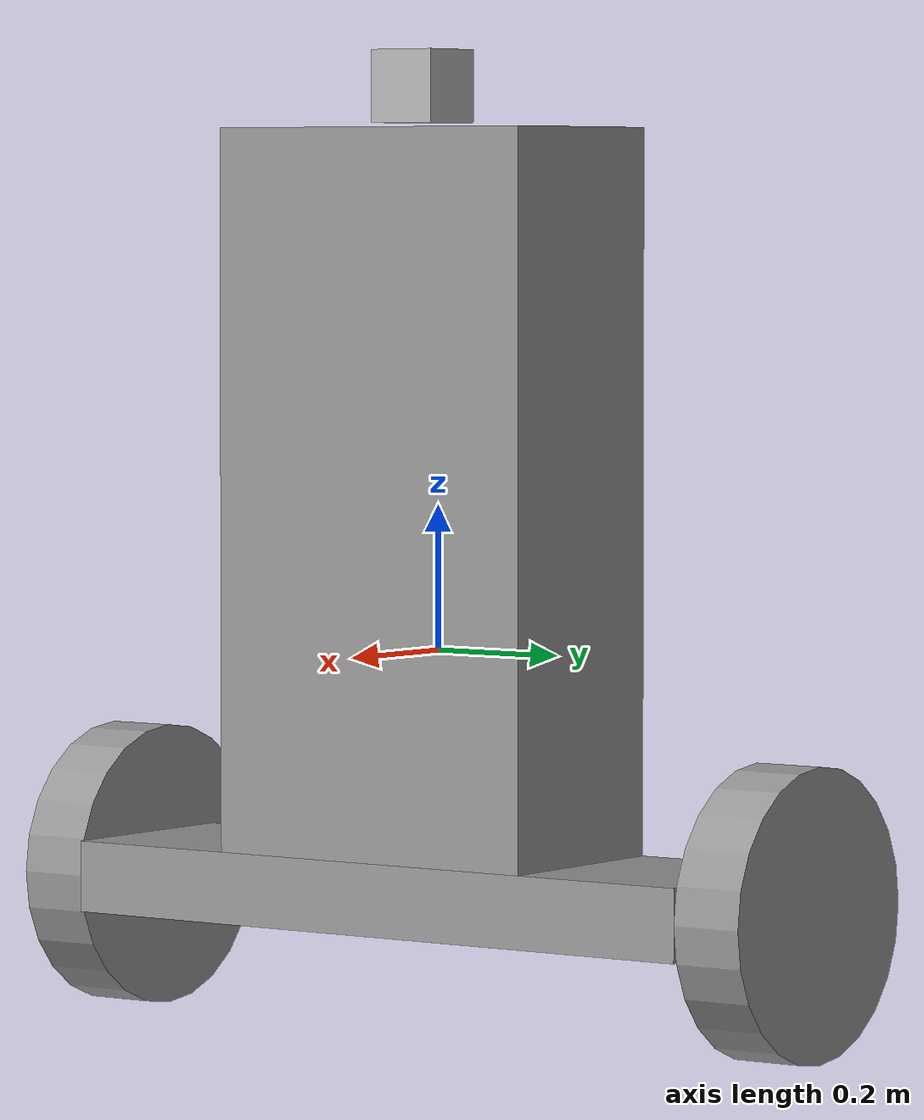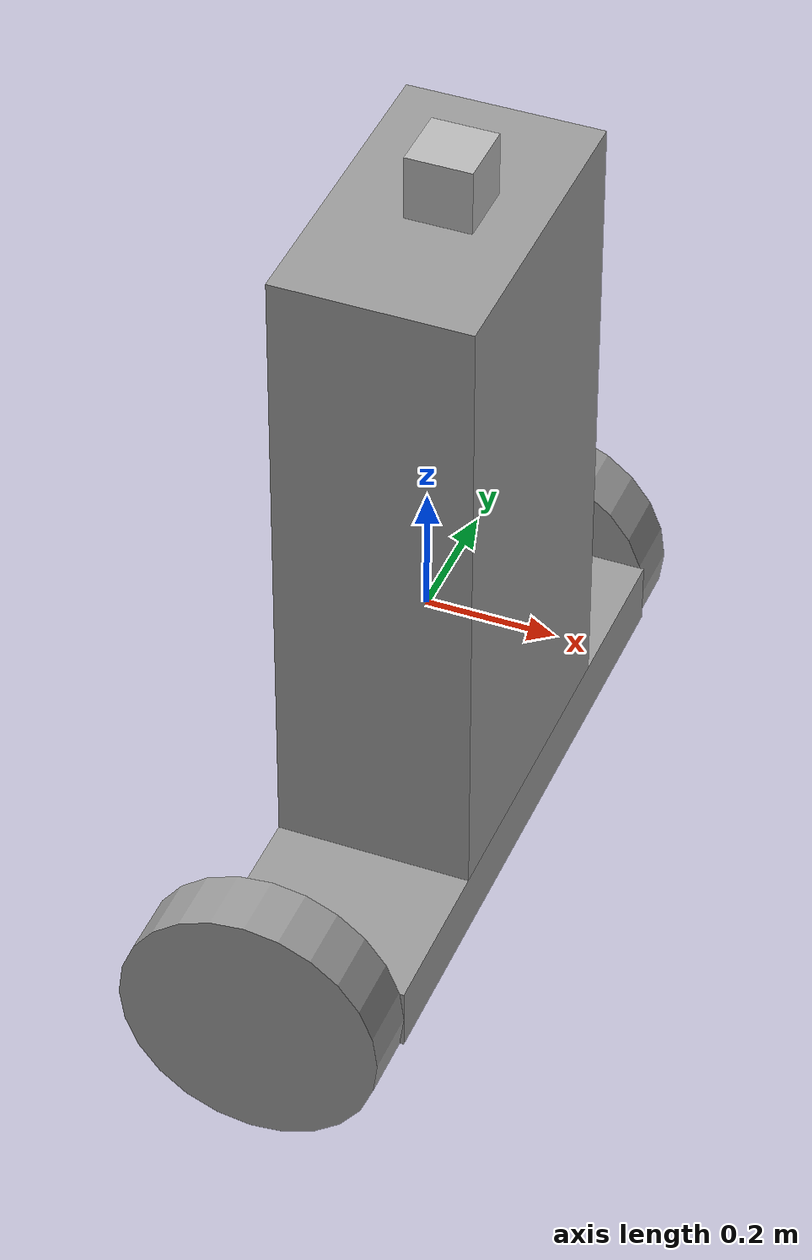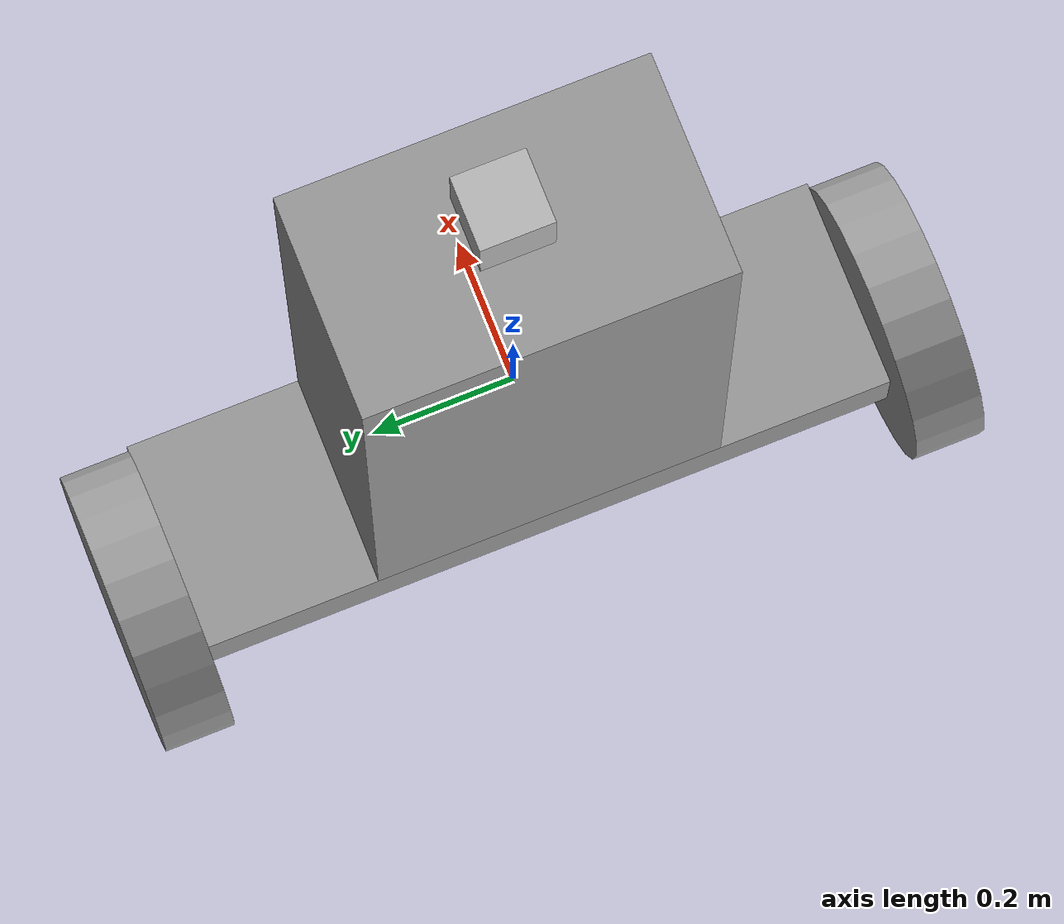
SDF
<?xml version='1.0'?>
<sdf version='1.6'>
  <model name='Humanoid'>
    <link name='link_0'>
      <pose frame=''>-0.033646 -0.549695 -0.331284 1.5707 -0 0</pose>
      <inertial>
        <mass>1</mass>
        <inertia>
          <ixx>0.145833</ixx>
          <ixy>0</ixy>
          <ixz>0</ixz>
          <iyy>0.145833</iyy>
          <iyz>0</iyz>
          <izz>0.125</izz>
        </inertia>
        <pose frame=''>0 0 0 0 -0 0</pose>
      </inertial>
      <self_collide>0</self_collide>
      <kinematic>0</kinematic>
      <visual name='visual'>
        <pose frame=''>0 0 0 0 -0 0</pose>
        <geometry>
          <cylinder>
            <radius>0.2</radius>
            <length>0.1</length>
          </cylinder>
        </geometry>
        <material>
          <lighting>1</lighting>
          <script>
            <uri>file://media/materials/scripts/gazebo.material</uri>
            <name>Gazebo/Grey</name>
          </script>
          <shader type='pixel'>
            <normal_map>__default__</normal_map>
          </shader>
          <ambient>0.3 0.3 0.3 1</ambient>
          <diffuse>0.7 0.7 0.7 1</diffuse>
          <specular>0.01 0.01 0.01 1</specular>
          <emissive>0 0 0 1</emissive>
        </material>
        <transparency>0</transparency>
        <cast_shadows>1</cast_shadows>
      </visual>
      <collision name='collision'>
        <laser_retro>0</laser_retro>
        <max_contacts>10</max_contacts>
        <pose frame=''>0 0 0 0 -0 0</pose>
        <geometry>
          <cylinder>
            <radius>0.2</radius>
            <length>0.1</length>
          </cylinder>
        </geometry>
        <surface>
          <friction>
            <ode>
              <mu>1</mu>
              <mu2>1</mu2>
              <fdir1>0 0 0</fdir1>
              <slip1>0</slip1>
              <slip2>0</slip2>
            </ode>
            <torsional>
              <coefficient>1</coefficient>
              <patch_radius>0</patch_radius>
              <surface_radius>0</surface_radius>
              <use_patch_radius>1</use_patch_radius>
              <ode>
                <slip>0</slip>
              </ode>
            </torsional>
          </friction>
          <bounce>
            <restitution_coefficient>0</restitution_coefficient>
            <threshold>1e+06</threshold>
          </bounce>
          <contact>
            <collide_without_contact>0</collide_without_contact>
            <collide_without_contact_bitmask>1</collide_without_contact_bitmask>
            <collide_bitmask>1</collide_bitmask>
            <ode>
              <soft_cfm>0</soft_cfm>
              <soft_erp>0.2</soft_erp>
              <kp>1e+13</kp>
              <kd>1</kd>
              <max_vel>0.01</max_vel>
              <min_depth>0</min_depth>
            </ode>
            <bullet>
              <split_impulse>1</split_impulse>
              <split_impulse_penetration_threshold>-0.01</split_impulse_penetration_threshold>
              <soft_cfm>0</soft_cfm>
              <soft_erp>0.2</soft_erp>
              <kp>1e+13</kp>
              <kd>1</kd>
            </bullet>
          </contact>
        </surface>
      </collision>
    </link>
    <link name='link_0_clone'>
      <pose frame=''>-0.033646 0.550344 -0.331284 1.5707 -0 0</pose>
      <inertial>
        <mass>1</mass>
        <inertia>
          <ixx>0.145833</ixx>
          <ixy>0</ixy>
          <ixz>0</ixz>
          <iyy>0.145833</iyy>
          <iyz>0</iyz>
          <izz>0.125</izz>
        </inertia>
        <pose frame=''>0 0 0 0 -0 0</pose>
      </inertial>
      <self_collide>0</self_collide>
      <kinematic>0</kinematic>
      <visual name='visual'>
        <pose frame=''>0 0 0 0 -0 0</pose>
        <geometry>
          <cylinder>
            <radius>0.2</radius>
            <length>0.1</length>
          </cylinder>
        </geometry>
        <material>
          <lighting>1</lighting>
          <script>
            <uri>file://media/materials/scripts/gazebo.material</uri>
            <name>Gazebo/Grey</name>
          </script>
          <shader type='pixel'>
            <normal_map>__default__</normal_map>
          </shader>
          <ambient>0.3 0.3 0.3 1</ambient>
          <diffuse>0.7 0.7 0.7 1</diffuse>
          <specular>0.01 0.01 0.01 1</specular>
          <emissive>0 0 0 1</emissive>
        </material>
        <transparency>0</transparency>
        <cast_shadows>1</cast_shadows>
      </visual>
      <collision name='collision'>
        <laser_retro>0</laser_retro>
        <max_contacts>10</max_contacts>
        <pose frame=''>0 0 0 0 -0 0</pose>
        <geometry>
          <cylinder>
            <radius>0.2</radius>
            <length>0.1</length>
          </cylinder>
        </geometry>
        <surface>
          <friction>
            <ode>
              <mu>1</mu>
              <mu2>1</mu2>
              <fdir1>0 0 0</fdir1>
              <slip1>0</slip1>
              <slip2>0</slip2>
            </ode>
            <torsional>
              <coefficient>1</coefficient>
              <patch_radius>0</patch_radius>
              <surface_radius>0</surface_radius>
              <use_patch_radius>1</use_patch_radius>
              <ode>
                <slip>0</slip>
              </ode>
            </torsional>
          </friction>
          <bounce>
            <restitution_coefficient>0</restitution_coefficient>
            <threshold>1e+06</threshold>
          </bounce>
          <contact>
            <collide_without_contact>0</collide_without_contact>
            <collide_without_contact_bitmask>1</collide_without_contact_bitmask>
            <collide_bitmask>1</collide_bitmask>
            <ode>
              <soft_cfm>0</soft_cfm>
              <soft_erp>0.2</soft_erp>
              <kp>1e+13</kp>
              <kd>1</kd>
              <max_vel>0.01</max_vel>
              <min_depth>0</min_depth>
            </ode>
            <bullet>
              <split_impulse>1</split_impulse>
              <split_impulse_penetration_threshold>-0.01</split_impulse_penetration_threshold>
              <soft_cfm>0</soft_cfm>
              <soft_erp>0.2</soft_erp>
              <kp>1e+13</kp>
              <kd>1</kd>
            </bullet>
          </contact>
        </surface>
      </collision>
    </link>
    <link name='link_1'>
      <pose frame=''>0.016354 0.000324 -0.331284 0 -0 0</pose>
      <inertial>
        <mass>1</mass>
        <inertia>
          <ixx>0.166667</ixx>
          <ixy>0</ixy>
          <ixz>0</ixz>
          <iyy>0.166667</iyy>
          <iyz>0</iyz>
          <izz>0.166667</izz>
        </inertia>
        <pose frame=''>0 0 0 0 -0 0</pose>
      </inertial>
      <self_collide>0</self_collide>
      <kinematic>0</kinematic>
      <visual name='visual'>
        <pose frame=''>0 0 0 0 -0 0</pose>
        <geometry>
          <box>
            <size>0.3 1 0.1</size>
          </box>
        </geometry>
        <material>
          <lighting>1</lighting>
          <script>
            <uri>file://media/materials/scripts/gazebo.material</uri>
            <name>Gazebo/Grey</name>
          </script>
          <shader type='pixel'>
            <normal_map>__default__</normal_map>
          </shader>
          <ambient>0.3 0.3 0.3 1</ambient>
          <diffuse>0.7 0.7 0.7 1</diffuse>
          <specular>0.01 0.01 0.01 1</specular>
          <emissive>0 0 0 1</emissive>
        </material>
        <transparency>0</transparency>
        <cast_shadows>1</cast_shadows>
      </visual>
      <collision name='collision'>
        <laser_retro>0</laser_retro>
        <max_contacts>10</max_contacts>
        <pose frame=''>0 0 0 0 -0 0</pose>
        <geometry>
          <box>
            <size>0.3 1 0.1</size>
          </box>
        </geometry>
        <surface>
          <friction>
            <ode>
              <mu>1</mu>
              <mu2>1</mu2>
              <fdir1>0 0 0</fdir1>
              <slip1>0</slip1>
              <slip2>0</slip2>
            </ode>
            <torsional>
              <coefficient>1</coefficient>
              <patch_radius>0</patch_radius>
              <surface_radius>0</surface_radius>
              <use_patch_radius>1</use_patch_radius>
              <ode>
                <slip>0</slip>
              </ode>
            </torsional>
          </friction>
          <bounce>
            <restitution_coefficient>0</restitution_coefficient>
            <threshold>1e+06</threshold>
          </bounce>
          <contact>
            <collide_without_contact>0</collide_without_contact>
            <collide_without_contact_bitmask>1</collide_without_contact_bitmask>
            <collide_bitmask>1</collide_bitmask>
            <ode>
              <soft_cfm>0</soft_cfm>
              <soft_erp>0.2</soft_erp>
              <kp>1e+13</kp>
              <kd>1</kd>
              <max_vel>0.01</max_vel>
              <min_depth>0</min_depth>
            </ode>
            <bullet>
              <split_impulse>1</split_impulse>
              <split_impulse_penetration_threshold>-0.01</split_impulse_penetration_threshold>
              <soft_cfm>0</soft_cfm>
              <soft_erp>0.2</soft_erp>
              <kp>1e+13</kp>
              <kd>1</kd>
            </bullet>
          </contact>
        </surface>
      </collision>
    </link>
    <link name='link_2'>
      <pose frame=''>0.016354 0.000324 0.218716 0 -0 0</pose>
      <inertial>
        <mass>1</mass>
        <inertia>
          <ixx>0.166667</ixx>
          <ixy>0</ixy>
          <ixz>0</ixz>
          <iyy>0.166667</iyy>
          <iyz>0</iyz>
          <izz>0.166667</izz>
        </inertia>
        <pose frame=''>0 0 0 0 -0 0</pose>
      </inertial>
      <self_collide>0</self_collide>
      <kinematic>0</kinematic>
      <visual name='visual'>
        <pose frame=''>0 0 0 0 -0 0</pose>
        <geometry>
          <box>
            <size>0.3 0.5 1</size>
          </box>
        </geometry>
        <material>
          <lighting>1</lighting>
          <script>
            <uri>file://media/materials/scripts/gazebo.material</uri>
            <name>Gazebo/Grey</name>
          </script>
          <shader type='pixel'>
            <normal_map>__default__</normal_map>
          </shader>
          <ambient>0.3 0.3 0.3 1</ambient>
          <diffuse>0.7 0.7 0.7 1</diffuse>
          <specular>0.01 0.01 0.01 1</specular>
          <emissive>0 0 0 1</emissive>
        </material>
        <transparency>0</transparency>
        <cast_shadows>1</cast_shadows>
      </visual>
      <collision name='collision'>
        <laser_retro>0</laser_retro>
        <max_contacts>10</max_contacts>
        <pose frame=''>0 0 0 0 -0 0</pose>
        <geometry>
          <box>
            <size>0.3 0.5 1</size>
          </box>
        </geometry>
        <surface>
          <friction>
            <ode>
              <mu>1</mu>
              <mu2>1</mu2>
              <fdir1>0 0 0</fdir1>
              <slip1>0</slip1>
              <slip2>0</slip2>
            </ode>
            <torsional>
              <coefficient>1</coefficient>
              <patch_radius>0</patch_radius>
              <surface_radius>0</surface_radius>
              <use_patch_radius>1</use_patch_radius>
              <ode>
                <slip>0</slip>
              </ode>
            </torsional>
          </friction>
          <bounce>
            <restitution_coefficient>0</restitution_coefficient>
            <threshold>1e+06</threshold>
          </bounce>
          <contact>
            <collide_without_contact>0</collide_without_contact>
            <collide_without_contact_bitmask>1</collide_without_contact_bitmask>
            <collide_bitmask>1</collide_bitmask>
            <ode>
              <soft_cfm>0</soft_cfm>
              <soft_erp>0.2</soft_erp>
              <kp>1e+13</kp>
              <kd>1</kd>
              <max_vel>0.01</max_vel>
              <min_depth>0</min_depth>
            </ode>
            <bullet>
              <split_impulse>1</split_impulse>
              <split_impulse_penetration_threshold>-0.01</split_impulse_penetration_threshold>
              <soft_cfm>0</soft_cfm>
              <soft_erp>0.2</soft_erp>
              <kp>1e+13</kp>
              <kd>1</kd>
            </bullet>
          </contact>
        </surface>
      </collision>
    </link>
    <model name='camera'>
      <pose frame=''>0.034588 -0.001297 0.775134 0 -0 0</pose>
      <link name='link'>
        <inertial>
          <mass>0.1</mass>
          <inertia>
            <ixx>0.000166667</ixx>
            <iyy>0.000166667</iyy>
            <izz>0.000166667</izz>
            <ixy>0</ixy>
            <ixz>0</ixz>
            <iyz>0</iyz>
          </inertia>
        </inertial>
        <collision name='collision'>
          <geometry>
            <box>
              <size>0.1 0.1 0.1</size>
            </box>
          </geometry>
          <max_contacts>10</max_contacts>
          <surface>
            <contact>
              <ode/>
            </contact>
            <bounce/>
            <friction>
              <torsional>
                <ode/>
              </torsional>
              <ode/>
            </friction>
          </surface>
        </collision>
        <visual name='visual'>
          <geometry>
            <box>
              <size>0.1 0.1 0.1</size>
            </box>
          </geometry>
        </visual>
        <sensor name='camera' type='camera'>
          <camera name='__default__'>
            <horizontal_fov>1.047</horizontal_fov>
            <image>
              <width>320</width>
              <height>240</height>
            </image>
            <clip>
              <near>0.1</near>
              <far>100</far>
            </clip>
          </camera>
          <always_on>1</always_on>
          <update_rate>30</update_rate>
          <visualize>1</visualize>
        </sensor>
        <self_collide>0</self_collide>
        <kinematic>0</kinematic>
      </link>
    </model>
    <joint name='link_1_JOINT_0_0' type='fixed'>
      <parent>link_1</parent>
      <child>link_2</child>
      <pose frame=''>0 0 0 0 -0 0</pose>
      <physics>
        <ode>
          <limit>
            <cfm>0</cfm>
            <erp>0.2</erp>
          </limit>
          <suspension>
            <cfm>0</cfm>
            <erp>0.2</erp>
          </suspension>
        </ode>
      </physics>
    </joint>
    <joint name='link_1_JOINT_0' type='revolute'>
      <parent>link_1</parent>
      <child>link_0</child>
      <pose frame=''>0 0 0 0 -0 0</pose>
      <axis>
        <xyz>0 0 1</xyz>
        <use_parent_model_frame>0</use_parent_model_frame>
        <limit>
          <lower>-1.79769e+308</lower>
          <upper>1.79769e+308</upper>
          <effort>-1</effort>
          <velocity>-1</velocity>
        </limit>
        <dynamics>
          <spring_reference>0</spring_reference>
          <spring_stiffness>0</spring_stiffness>
          <damping>0</damping>
          <friction>0</friction>
        </dynamics>
      </axis>
      <physics>
        <ode>
          <limit>
            <cfm>0</cfm>
            <erp>0.2</erp>
          </limit>
          <suspension>
            <cfm>0</cfm>
            <erp>0.2</erp>
          </suspension>
        </ode>
      </physics>
    </joint>
    <joint name='link_1_JOINT_1' type='revolute'>
      <parent>link_1</parent>
      <child>link_0_clone</child>
      <pose frame=''>0 0 0 0 -0 0</pose>
      <axis>
        <xyz>0 0 1</xyz>
        <use_parent_model_frame>0</use_parent_model_frame>
        <limit>
          <lower>-1.79769e+308</lower>
          <upper>1.79769e+308</upper>
          <effort>-1</effort>
          <velocity>-1</velocity>
        </limit>
        <dynamics>
          <spring_reference>0</spring_reference>
          <spring_stiffness>0</spring_stiffness>
          <damping>0</damping>
          <friction>0</friction>
        </dynamics>
      </axis>
      <physics>
        <ode>
          <limit>
            <cfm>0</cfm>
            <erp>0.2</erp>
          </limit>
          <suspension>
            <cfm>0</cfm>
            <erp>0.2</erp>
          </suspension>
        </ode>
      </physics>
    </joint>
    <joint name='link_2_JOINT_1' type='fixed'>
      <parent>link_2</parent>
      <child>camera::link</child>
      <pose frame=''>0 0 0 0 -0 0</pose>
      <physics>
        <ode>
          <limit>
            <cfm>0</cfm>
            <erp>0.2</erp>
          </limit>
          <suspension>
            <cfm>0</cfm>
            <erp>0.2</erp>
          </suspension>
        </ode>
      </physics>
    </joint>
    <static>0</static>
    <allow_auto_disable>1</allow_auto_disable>
    <plugin name='follower' filename='libFollowerPlugin.so'/>
  </model>
</sdf>
